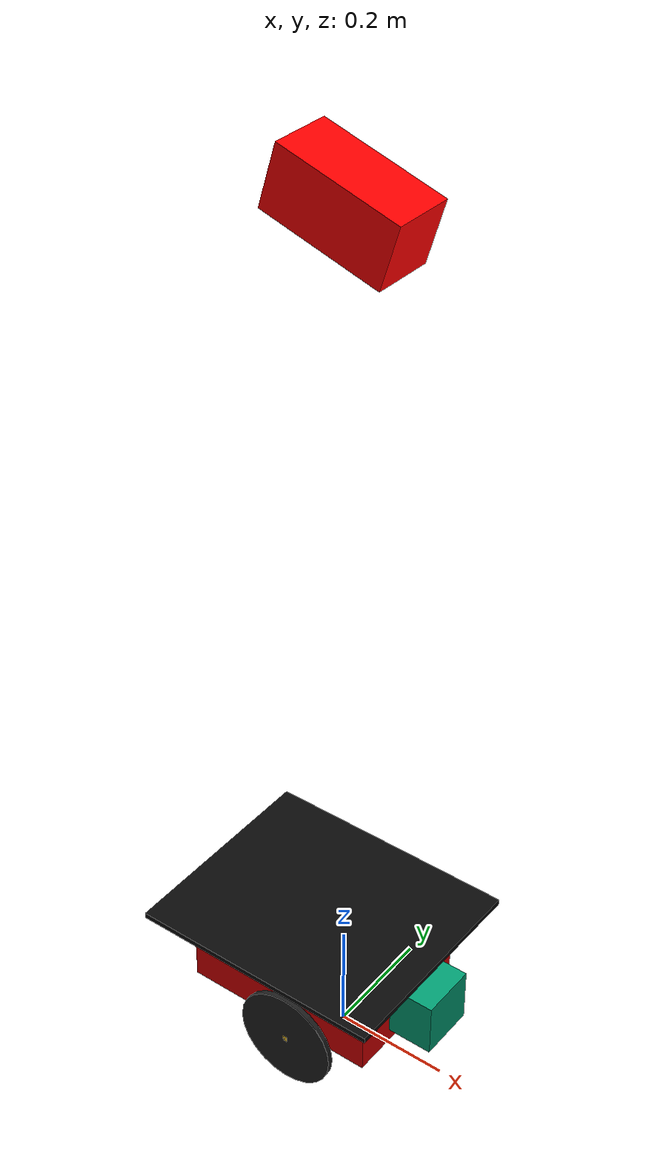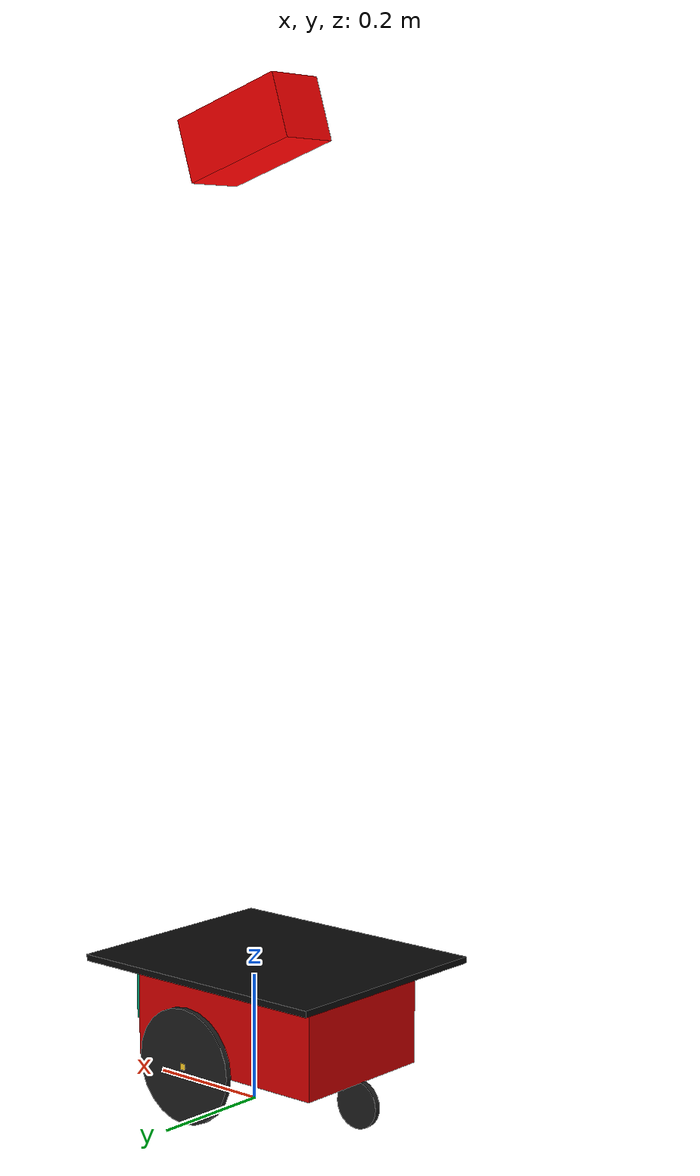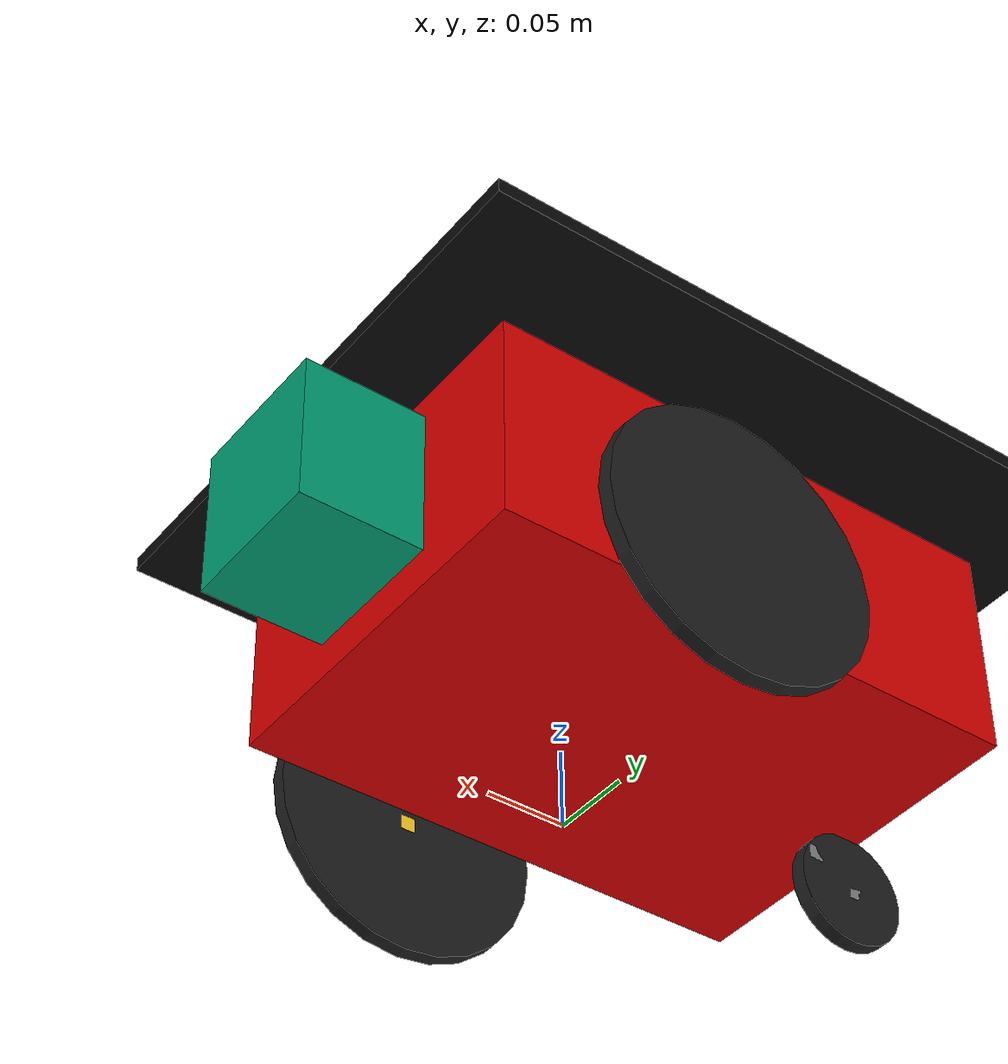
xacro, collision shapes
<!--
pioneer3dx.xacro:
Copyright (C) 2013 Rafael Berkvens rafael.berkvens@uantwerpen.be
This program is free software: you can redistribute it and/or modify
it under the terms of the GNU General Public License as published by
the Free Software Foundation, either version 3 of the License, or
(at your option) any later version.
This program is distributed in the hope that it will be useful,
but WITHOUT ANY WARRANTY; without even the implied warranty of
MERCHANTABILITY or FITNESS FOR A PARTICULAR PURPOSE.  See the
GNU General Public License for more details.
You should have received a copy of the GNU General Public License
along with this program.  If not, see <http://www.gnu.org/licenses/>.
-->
<?xml version="1.0"?>
<robot name="p3dx_with_cam" xmlns:xacro="http://www.ros.org/wiki/xacro">

  <xacro:include filename="$(find p3dx_description)/urdf/pioneer3dx.xacro" />
  <xacro:include filename="$(find sparse_dynamic_calibration)/urdf/create_kinect.urdf.xacro" />

  <xacro:create_kinect name="p3dx/kinect" parent="base_link" xyz="0 0 1.5" rpy="0 0.3 0" fps="20" fov="2.0" use_depth="false" distortion="1e-5"/>
</robot>

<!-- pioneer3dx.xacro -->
<robot name="pioneer3dx" xmlns:xacro="http://ros.org/wiki/xacro">

  <!-- import all gazebo-customization elements, including gazebo colors -->
  <xacro:include filename="$(find p3dx_description)/urdf/pioneer3dx.gazebo" />
  <!-- import the pioneer 3dx's wheels -->
  <xacro:include filename="$(find p3dx_description)/urdf/pioneer3dx_wheel.xacro" />

  <!-- chassis -->
	<link name="base_link">
		<inertial>
			<mass value="3.5" />
			<origin xyz="-0.05 0 0" />
			<inertia ixx="1" ixy="0" ixz="0" iyy="1" iyz="0" izz="1" />
		</inertial>

		<visual name="base_visual">
			<origin xyz="-0.045 0 0.148" rpy="0 0 0" />
			<geometry name="pioneer_geom">
				<mesh filename="package://p3dx_description/meshes/chassis.stl" />
			</geometry>
			<material name="ChassisRed">
				<color rgba="0.851 0.0 0.0 1.0" />
			</material>
		</visual>

		<collision>
			<origin xyz="-0.045 0 0.145" rpy="0 0 0" />
			<geometry>
				<box size="0.35 0.25 0.14" />
			</geometry>
		</collision>
	</link>

  <!-- top_plate -->
	<link name="top_plate">
		<inertial>
			<mass value="0.01" />
			<origin xyz="0 0 0" />
			<inertia ixx="1" ixy="0" ixz="0" iyy="1" iyz="0" izz="1" />
		</inertial>

		<visual name="base_visual">
			<origin xyz="0 0 0" rpy="0 0 0" />
			<geometry name="top_geom">
				<mesh filename="package://p3dx_description/meshes/top.stl" />
			</geometry>

			<material name="TopBlack">
				<color rgba="0.038 0.038 0.038 1.0" />
			</material>
		</visual>

		<collision>
			<origin xyz="0.0 0 0" rpy="0 0 0" />
			<geometry name="pioneer_geom">
				<box size="0.45 0.38 0.01" />
			</geometry>
		</collision>
	</link>

	<joint name="base_top_joint" type="fixed">
		<origin xyz="-0.045 0 0.234" rpy="0 0 0" />
		<parent link="base_link" />
		<child link="top_plate" />
	</joint>

  <!-- swivel -->
	<link name="swivel">
		<inertial>
			<mass value="0.1" />
			<origin xyz="0 0 0" />
			<inertia ixx="0.01" ixy="0" ixz="0" iyy="0.01" iyz="0" izz="0.01" />
		</inertial>

		<visual name="base_visual">
			<origin xyz="0 0 0" rpy="0 0 0" />
			<geometry name="pioneer_geom">
				<mesh filename="package://p3dx_description/meshes/swivel.stl" />
			</geometry>
			<material name="swivel">
				<color rgba="0.5 0.5 0.5 1" />
			</material>
		</visual>

		<collision>
			<origin xyz="0 0 0" rpy="0 0 0" />
			<geometry>
				<box size="0.01 0.01 0.01" />
			</geometry>
		</collision>
	</link>

	<joint name="base_swivel_joint" type="continuous">
		<origin xyz="-0.185 0 0.055" rpy="0 0 0" />
		<axis xyz="0 0 1" />
		<anchor xyz="0 0 0" />
		<limit effort="100" velocity="100" k_velocity="0" />
		<joint_properties damping="0.0" friction="0.0" />
		<parent link="base_link" />
		<child link="swivel" />
	</joint>

  <!-- center_hubcap -->
	<link name="center_hubcap">
		<inertial>
			<mass value="0.01" />
			<origin xyz="0 0 0" />
			<inertia ixx="0.012411765597" ixy="-0.000711733678" ixz="0.00050272983"
				iyy="0.015218160428" iyz="-0.000004273467" izz="0.011763977943" />
		</inertial>

		<visual name="base_visual">
			<origin xyz="0 0 0" rpy="0 0 0" />
			<geometry name="pioneer_geom">
				<mesh filename="package://p3dx_description/meshes/center_hubcap.stl" />
			</geometry>
			<material name="swivel">
				<color rgba="0.5 0.5 0.5 1" />
			</material>
		</visual>

		<collision>
			<origin xyz="0 0 0" rpy="0 0 0" />
			<geometry>
				<box size="0.01 0.01 0.01" />
			</geometry>
		</collision>
	</link>

	<joint name="swivel_hubcap_joint" type="continuous">
		<origin xyz="-0.026 0 -0.016" rpy="0 0 0" />
		<axis xyz="0 1 0" />
		<anchor xyz="0 0 0" />
		<limit effort="100" velocity="100" k_velocity="0" />
		<joint_properties damping="0.0" friction="0.0" />
		<parent link="swivel" />
		<child link="center_wheel" />
	</joint>

  <!-- center_wheel -->
	<link name="center_wheel">
		<inertial>
			<mass value="0.1" />
			<origin xyz="0 0 0" />
			<inertia ixx="0.012411765597" ixy="-0.000711733678" ixz="0.00050272983"
				iyy="0.015218160428" iyz="-0.000004273467" izz="0.011763977943" />
		</inertial>

		<visual name="base_visual">
			<origin xyz="0 0 0" rpy="0 0 0" />
			<geometry name="pioneer_geom">
				<mesh filename="package://p3dx_description/meshes/center_wheel.stl" />
			</geometry>
			<material name="WheelBlack">
				<color rgba="0.117 0.117 0.117 1" />
			</material>
		</visual>

		<collision>
			<origin xyz="0 0 0" rpy="${-3.1415927/2.0} 0 0" />
			<geometry>
				<cylinder radius="0.0375" length="0.01" />
			</geometry>
		</collision>
	</link>

	<joint name="center_wheel_joint" type="fixed">
		<origin xyz="-0.0035 0 -0.001" rpy="0 0 0"/>
		<parent link="center_wheel"/>
		<child link="center_hubcap"/>
	</joint>

	<xacro:p3dx_wheel suffix="left" parent="base_link" reflect="1"/>
	<xacro:p3dx_wheel suffix="right" parent="base_link" reflect="-1"/>

  <!-- front_sonar -->
	<link name="front_sonar">
		<inertial>
			<mass value="0.0001" />
			<origin xyz="0 0 0" />
			<inertia ixx="1" ixy="0" ixz="0" iyy="1" iyz="0" izz="1" />
		</inertial>

		<visual name="front_sonar_vis">
			<origin rpy="0 0 0" xyz="0 0 0" />
			<geometry name="pioneer_geom">
				<mesh filename="package://p3dx_description/meshes/front_sonar.stl" />
			</geometry>
			<material name="SonarYellow">
				<color rgba="0.715 0.583 0.210 1.0" />
			</material>
		</visual>

		<collision>
			<origin rpy="0 0 0" xyz="0 0 0" />
			<geometry>
				<box size="0.01 0.01 0.01" />
			</geometry>
		</collision>
	</link>

	<joint name="base_front_joint" type="fixed">
		<origin rpy="0 0 0" xyz="0.109 0 0.209" />
		<parent link="base_link" />
		<child link="front_sonar" />
	</joint>

	<!-- lms100 laser -->
	<link name="lms100">
		<inertial>
			<mass value="1e-5" />
			<origin xyz="0 0 0" rpy="0 0 0" />
			<inertia ixx="1e-6" ixy="0" ixz="0" iyy="1e-6" iyz="0" izz="1e-6" />
		</inertial>

		<visual>
			<origin xyz="0 0 0" rpy="0 0 0" />
			<geometry>
				<mesh filename="package://p3dx_description/meshes/lms100.dae" />
			</geometry>
		</visual>

		<collision>
			<origin xyz="0 0 0" rpy="0 0 0" />
			<geometry>
				<box size="0.1 0.1 0.1" />
			</geometry>
		</collision>
	</link>

	<joint name="lms100_joint" type="fixed">
		<axis xyz="0 1 0" />
		<origin xyz="0.16 0 0.15" rpy="0 0 0" />
		<parent link="base_link" />
		<child link="lms100" />
	</joint>

</robot>

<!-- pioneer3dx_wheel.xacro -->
<robot xmlns:xacro="http://ros.org/wiki/xacro">

	<!-- properties (constants) -->
	<property name="M_PI" value="3.14159" />

	<!-- right/left hubcap + wheel -->
	<xacro:macro name="p3dx_wheel" params="suffix parent reflect">

		<!-- wheel -->
		<link name="p3dx_${suffix}_wheel">
			<inertial>
				<mass value="0.5" />
				<origin xyz="0 0 0" />
				<inertia ixx="0.012411765597" ixy="0" ixz="0" iyy="0.015218160428"
					iyz="0" izz="0.011763977943" />
			</inertial>

			<visual name="base_visual">
				<origin xyz="0 0 0" rpy="0 0 0" />
				<geometry name="pioneer_geom">
					<mesh filename="package://p3dx_description/meshes/${suffix}_wheel.stl" />
				</geometry>
				<material name="WheelBlack">
					<color rgba="0.117 0.117 0.117 1" />
				</material>
			</visual>

			<collision>
				<origin xyz="0 0 0" rpy="${-3.1415927/2} 0 0" />
				<geometry>
					<cylinder radius="0.09" length="0.01" />
				</geometry>
			</collision>
		</link>

		<joint name="base_${suffix}_hubcap_joint" type="fixed">
			<origin xyz="0 0 0" rpy="0 0 0" />
			<parent link="p3dx_${suffix}_wheel" />
			<child link="p3dx_${suffix}_hubcap" />
		</joint>

		<!-- hubcap -->
		<link name="p3dx_${suffix}_hubcap">
			<inertial>
				<mass value="0.01" />
				<origin xyz="0 0 0" />
				<inertia ixx="0.012411765597" ixy="0" ixz="0" iyy="0.015218160428"
					iyz="0" izz="0.011763977943" />
			</inertial>

			<visual name="base_visual">
				<origin xyz="0 0 0" rpy="0 0 0" />
				<geometry name="pioneer_geom">
					<mesh filename="package://p3dx_description/meshes/${suffix}_hubcap.stl" />
				</geometry>

				<material name="HubcapYellow">
					<color rgba="1.0 0.811 0.151 1.0" />
				</material>
			</visual>

			<collision>
				<origin xyz="0 0 0" rpy="0 0 0" />
				<geometry>
					<box size="0.01 0.01 0.01" />
				</geometry>
			</collision>
		</link>

		<joint name="base_${suffix}_wheel_joint" type="continuous">
			<axis xyz="0 1 0" />
			<anchor xyz="0 0 0" />
			<limit effort="100" velocity="100" />
			<joint_properties damping="0.0" friction="0.0" />
			<origin xyz="0 ${reflect*0.158} 0.091" rpy="0 0 0" />
			<parent link="base_link" />
			<child link="p3dx_${suffix}_wheel" />
		</joint>

		<!-- gazebo elements -->

	    <transmission name="${parent}_${suffix}_wheel_trans">
	      <type>pr2_mechanism_model/SimpleTransmission</type>
	      <joint name="base_${suffix}_wheel_joint">
	      	<hardwareInterface>VelocityJointInterface</hardwareInterface>
	  	  </joint>
	      <actuator name="base_${suffix}_wheel_motor">
	        <mechanicalReduction>${reflect * 624/35 * 80/19}</mechanicalReduction>
	      </actuator>
	    </transmission>

		<gazebo reference="p3dx_${suffix}_hubcap">
			<material>Gazebo/Yellow</material>
		</gazebo>

		<gazebo reference="p3dx_${suffix}_wheel">
			<material>Gazebo/Black</material>
			<mu1>0.5</mu1>
			<mu2>50.0</mu2>
			<kp>100000000.0</kp>
			<kd>1.0</kd>
		</gazebo>

	</xacro:macro>

</robot>

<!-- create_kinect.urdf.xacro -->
<root xmlns:sensor="http://playerstage.sourceforge.net/gazebo/xmlschema/#sensor"
      xmlns:controller="http://playerstage.sourceforge.net/gazebo/xmlschema/#controller"
      xmlns:interface="http://playerstage.sourceforge.net/gazebo/xmlschema/#interface"
      xmlns:xacro="http://ros.org/wiki/xacro">

<xacro:macro name="create_kinect" params="name parent xyz rpy fps:=30 fov:=1.3962634 width:=1920 height:=1080 use_depth:=true distortion:=0.0">

  <joint name="${name}_joint" type="fixed">
    <origin xyz="${xyz}" rpy="${rpy}"/>
    <parent link="${parent}"/>
    <child link="${name}_link"/>
  </joint>

  <joint name="${name}_optical_joint" type="fixed">
    <origin xyz="0 0 0" rpy="${-pi/2} 0 ${-pi/2}"/>
    <parent link="${name}_link"/>
    <child link="${name}_optical_link"/>
  </joint>

  <link name="${name}_link">
    <collision>
      <origin xyz="0 0 0" rpy="0 0 0"/>
      <geometry>
        <box size="0.2 0.1 0.1"/>
      </geometry>
    </collision>

    <visual>
      <origin xyz="0 0 0" rpy="0 0 0"/>
      <geometry>
        <box size="0.2 0.1 0.1"/>
      </geometry>
      <material name="Red">
        <color rgba="1 0 0 1"/>
      </material>
    </visual>

    <inertial>
      <mass value="1e-5" />
      <origin xyz="0 0 0" rpy="0 0 0"/>
      <inertia ixx="1e-6" ixy="0" ixz="0" iyy="1e-6" iyz="0" izz="1e-6" />
    </inertial>
  </link>

  <link name="${name}_optical_link">
  </link>

  <!-- camera gazebo plugin -->
  <gazebo reference="${name}_link">
    <material>Gazebo/Red</material>
    <sensor type="depth" name="${name}">
      <update_rate>${fps}</update_rate>
      <camera name="head">
        <horizontal_fov>${fov}</horizontal_fov>
        <image>
          <width>${width}</width>
          <height>${height}</height>
          <format>R8G8B8</format>
        </image>
        <clip>
          <near>0.02</near>
          <far>20.0</far>
        </clip>
        <noise>
          <type>gaussian</type>
          <mean>0.0</mean>
          <stddev>0.007</stddev>
        </noise>
      </camera>
      <xacro:if value="${use_depth}">
        <plugin name="${name}_ir_controller" filename="libgazebo_ros_openni_kinect.so">
        	<baseline>0.2</baseline>
          <alwaysOn>true</alwaysOn>
          <updateRate>1.0</updateRate>
          <cameraName>${name}</cameraName>
          <imageTopicName>rgb/image</imageTopicName>
          <depthImageTopicName>depth/image</depthImageTopicName>
          <pointCloudTopicName>depth/points</pointCloudTopicName>
          <cameraInfoTopicName>rgb/camera_info</cameraInfoTopicName>
          <depthImageCameraInfoTopicName>depth/camera_info</depthImageCameraInfoTopicName>
          <frameName>${name}_optical_link</frameName>
          <pointCloudCutoff>0.3</pointCloudCutoff>
          <distortionK1>${distortion}</distortionK1>
          <distortionK2>${distortion}</distortionK2>
          <distortionK3>${distortion}</distortionK3>
          <distortionT1>${distortion}</distortionT1>
          <distortionT2>${distortion}</distortionT2>
          <CxPrime>0</CxPrime>
          <Cx>0</Cx>
          <Cy>0</Cy>
          <foculLength>0</foculLength>
          <hackBaseline>0</hackBaseline>
        </plugin>
    </xacro:if>
    <xacro:unless value="${use_depth}">
        <plugin name="${name}_ir_controller" filename="libgazebo_ros_camera.so">
          <alwaysOn>true</alwaysOn>
          <updateRate>0.0</updateRate>
          <cameraName>${name}</cameraName>
          <imageTopicName>rgb/image</imageTopicName>
          <cameraInfoTopicName>rgb/camera_info</cameraInfoTopicName>
          <frameName>${name}_optical_link</frameName>
          <hackBaseline>0.07</hackBaseline>
          <distortionK1>${distortion}</distortionK1>
          <distortionK2>${distortion}</distortionK2>
          <distortionK3>${distortion}</distortionK3>
          <distortionT1>${distortion}</distortionT1>
          <distortionT2>${distortion}</distortionT2>
        </plugin>
    </xacro:unless>
    </sensor>
  </gazebo>
</xacro:macro>

</root>
